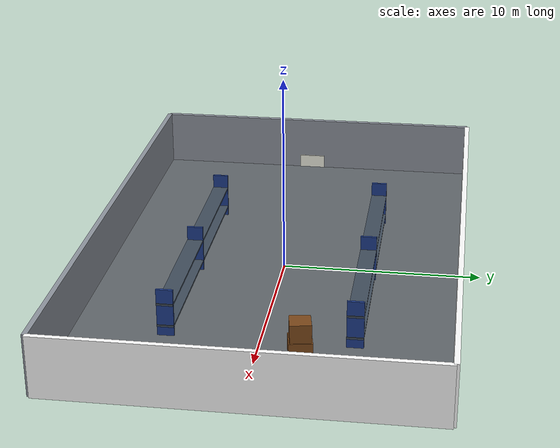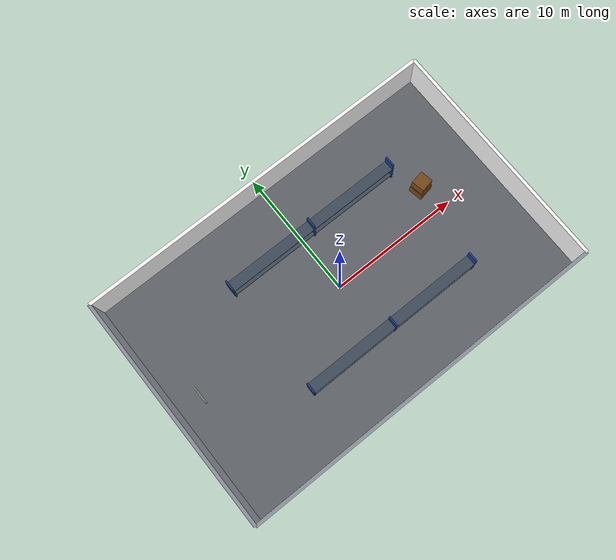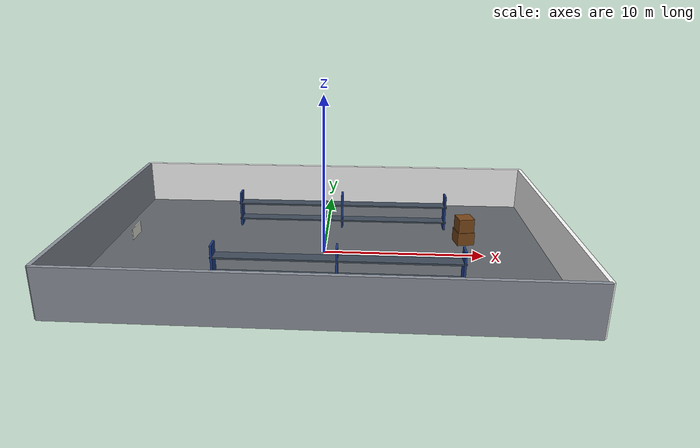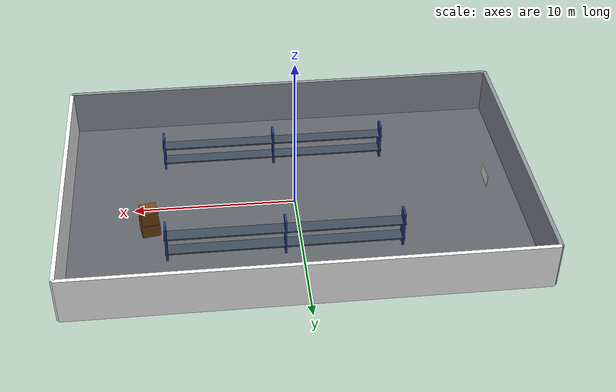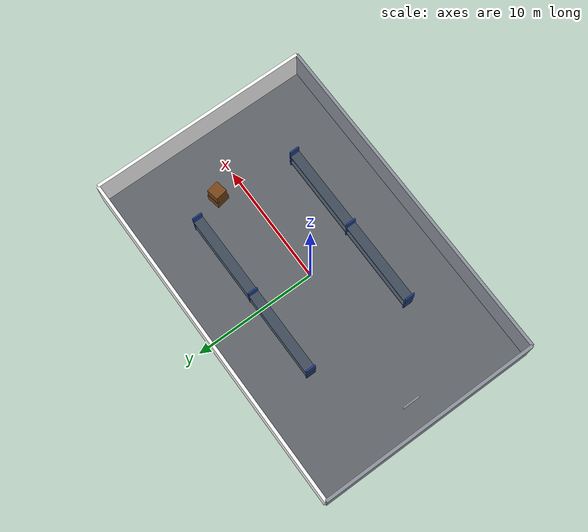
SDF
<?xml version="1.0"?>
<!-- Download-free TurtleBot3 + Ouster warehouse. Use ray_mode:=raycast. -->
<sdf version="1.9">
  <world name="turtlebot3_warehouse">
    <physics name="default" type="ignored">
      <max_step_size>0.004</max_step_size>
      <real_time_factor>1.0</real_time_factor>
      <real_time_update_rate>250</real_time_update_rate>
    </physics>
    <plugin filename="gz-sim-physics-system" name="gz::sim::systems::Physics"/>
    <plugin filename="gz-sim-scene-broadcaster-system" name="gz::sim::systems::SceneBroadcaster"/>
    <plugin filename="gz-sim-user-commands-system" name="gz::sim::systems::UserCommands"/>
    <plugin filename="gz-sim-imu-system" name="gz::sim::systems::Imu"/>
    <plugin filename="gz-sim-altimeter-system" name="gz::sim::systems::Altimeter"/>

    <scene>
      <ambient>0.35 0.35 0.38 1</ambient>
      <background>0.55 0.62 0.7 1</background>
      <shadows>true</shadows>
    </scene>
    <light type="directional" name="skylight">
      <cast_shadows>true</cast_shadows>
      <pose>0 0 12 0 0 0</pose>
      <diffuse>0.85 0.82 0.76 1</diffuse>
      <specular>0.25 0.25 0.25 1</specular>
      <direction>-0.4 0.25 -1</direction>
    </light>

    <model name="concrete_floor">
      <static>true</static>
      <link name="link">
        <collision name="collision"><geometry><box><size>28 18 0.1</size></box></geometry></collision>
        <visual name="visual">
          <laser_retro>0.42</laser_retro>
          <geometry><box><size>28 18 0.1</size></box></geometry>
          <material><diffuse>0.38 0.4 0.42 1</diffuse><specular>0.06 0.06 0.06 1</specular></material>
        </visual>
      </link>
    </model>

    <model name="graffiti_wall_north">
      <static>true</static><pose>0 9 1.5 0 0 0</pose>
      <link name="link">
        <collision name="collision"><geometry><box><size>28 0.25 3</size></box></geometry></collision>
        <visual name="visual"><geometry><box><size>28 0.25 3</size></box></geometry>
          <material><ambient>1 1 1 1</ambient><diffuse>1 1 1 1</diffuse><pbr><metal>
            <albedo_map>../media/materials/textures/brick_graffiti.png</albedo_map>
            <metalness>0</metalness><roughness>0.82</roughness>
          </metal></pbr></material>
        </visual>
      </link>
    </model>
    <model name="graffiti_wall_east">
      <static>true</static><pose>14 0 1.5 0 0 0</pose>
      <link name="link">
        <collision name="collision"><geometry><box><size>0.25 18 3</size></box></geometry></collision>
        <visual name="visual"><geometry><box><size>0.25 18 3</size></box></geometry>
          <material><ambient>1 1 1 1</ambient><diffuse>1 1 1 1</diffuse><pbr><metal>
            <albedo_map>../media/materials/textures/brick_graffiti.png</albedo_map>
            <metalness>0</metalness><roughness>0.82</roughness>
          </metal></pbr></material>
        </visual>
      </link>
    </model>
    <model name="wall_south">
      <static>true</static><pose>0 -9 1.5 0 0 0</pose>
      <link name="link">
        <collision name="collision"><geometry><box><size>28 0.25 3</size></box></geometry></collision>
        <visual name="visual"><laser_retro>0.58</laser_retro><geometry><box><size>28 0.25 3</size></box></geometry>
          <material><diffuse>0.56 0.58 0.62 1</diffuse></material></visual>
      </link>
    </model>
    <model name="wall_west">
      <static>true</static><pose>-14 0 1.5 0 0 0</pose>
      <link name="link">
        <collision name="collision"><geometry><box><size>0.25 18 3</size></box></geometry></collision>
        <visual name="visual"><laser_retro>0.58</laser_retro><geometry><box><size>0.25 18 3</size></box></geometry>
          <material><diffuse>0.56 0.58 0.62 1</diffuse></material></visual>
      </link>
    </model>

    <!-- Two shelf rows leave a broad centre aisle around the spawn point. -->
    <model name="rack_row_north">
      <static>true</static><pose>1 4.4 0 0 0 0</pose>
      <link name="link">
        <collision name="upright_a"><pose>-7 0 1.2 0 0 0</pose><geometry><box><size>0.12 0.8 2.4</size></box></geometry></collision>
        <visual name="upright_a_v"><pose>-7 0 1.2 0 0 0</pose><laser_retro>0.62</laser_retro><geometry><box><size>0.12 0.8 2.4</size></box></geometry><material><diffuse>0.12 0.24 0.55 1</diffuse><specular>0.3 0.3 0.3 1</specular></material></visual>
        <collision name="upright_b"><pose>0 0 1.2 0 0 0</pose><geometry><box><size>0.12 0.8 2.4</size></box></geometry></collision>
        <visual name="upright_b_v"><pose>0 0 1.2 0 0 0</pose><laser_retro>0.62</laser_retro><geometry><box><size>0.12 0.8 2.4</size></box></geometry><material><diffuse>0.12 0.24 0.55 1</diffuse><specular>0.3 0.3 0.3 1</specular></material></visual>
        <collision name="upright_c"><pose>7 0 1.2 0 0 0</pose><geometry><box><size>0.12 0.8 2.4</size></box></geometry></collision>
        <visual name="upright_c_v"><pose>7 0 1.2 0 0 0</pose><laser_retro>0.62</laser_retro><geometry><box><size>0.12 0.8 2.4</size></box></geometry><material><diffuse>0.12 0.24 0.55 1</diffuse><specular>0.3 0.3 0.3 1</specular></material></visual>
        <collision name="shelf_low"><pose>0 0 0.55 0 0 0</pose><geometry><box><size>14.2 0.8 0.1</size></box></geometry></collision>
        <visual name="shelf_low_v"><pose>0 0 0.55 0 0 0</pose><laser_retro>0.48</laser_retro><geometry><box><size>14.2 0.8 0.1</size></box></geometry><material><diffuse>0.25 0.3 0.36 1</diffuse></material></visual>
        <collision name="shelf_high"><pose>0 0 1.65 0 0 0</pose><geometry><box><size>14.2 0.8 0.1</size></box></geometry></collision>
        <visual name="shelf_high_v"><pose>0 0 1.65 0 0 0</pose><laser_retro>0.48</laser_retro><geometry><box><size>14.2 0.8 0.1</size></box></geometry><material><diffuse>0.25 0.3 0.36 1</diffuse></material></visual>
      </link>
    </model>
    <model name="rack_row_south">
      <static>true</static><pose>1 -4.4 0 0 0 0</pose>
      <link name="link">
        <collision name="upright_a"><pose>-7 0 1.2 0 0 0</pose><geometry><box><size>0.12 0.8 2.4</size></box></geometry></collision>
        <visual name="upright_a_v"><pose>-7 0 1.2 0 0 0</pose><laser_retro>0.62</laser_retro><geometry><box><size>0.12 0.8 2.4</size></box></geometry><material><diffuse>0.12 0.24 0.55 1</diffuse><specular>0.3 0.3 0.3 1</specular></material></visual>
        <collision name="upright_b"><pose>0 0 1.2 0 0 0</pose><geometry><box><size>0.12 0.8 2.4</size></box></geometry></collision>
        <visual name="upright_b_v"><pose>0 0 1.2 0 0 0</pose><laser_retro>0.62</laser_retro><geometry><box><size>0.12 0.8 2.4</size></box></geometry><material><diffuse>0.12 0.24 0.55 1</diffuse><specular>0.3 0.3 0.3 1</specular></material></visual>
        <collision name="upright_c"><pose>7 0 1.2 0 0 0</pose><geometry><box><size>0.12 0.8 2.4</size></box></geometry></collision>
        <visual name="upright_c_v"><pose>7 0 1.2 0 0 0</pose><laser_retro>0.62</laser_retro><geometry><box><size>0.12 0.8 2.4</size></box></geometry><material><diffuse>0.12 0.24 0.55 1</diffuse><specular>0.3 0.3 0.3 1</specular></material></visual>
        <collision name="shelf_low"><pose>0 0 0.55 0 0 0</pose><geometry><box><size>14.2 0.8 0.1</size></box></geometry></collision>
        <visual name="shelf_low_v"><pose>0 0 0.55 0 0 0</pose><laser_retro>0.48</laser_retro><geometry><box><size>14.2 0.8 0.1</size></box></geometry><material><diffuse>0.25 0.3 0.36 1</diffuse></material></visual>
        <collision name="shelf_high"><pose>0 0 1.65 0 0 0</pose><geometry><box><size>14.2 0.8 0.1</size></box></geometry></collision>
        <visual name="shelf_high_v"><pose>0 0 1.65 0 0 0</pose><laser_retro>0.48</laser_retro><geometry><box><size>14.2 0.8 0.1</size></box></geometry><material><diffuse>0.25 0.3 0.36 1</diffuse></material></visual>
      </link>
    </model>

    <model name="crate_stack">
      <static>true</static><pose>9 2 0 0 0 0.18</pose>
      <link name="link">
        <collision name="c1"><pose>0 0 0.45 0 0 0</pose><geometry><box><size>1.1 1.1 0.9</size></box></geometry></collision>
        <visual name="v1"><pose>0 0 0.45 0 0 0</pose><laser_retro>0.32</laser_retro><geometry><box><size>1.1 1.1 0.9</size></box></geometry><material><diffuse>0.48 0.28 0.1 1</diffuse></material></visual>
        <collision name="c2"><pose>0 0 1.35 0 0 0</pose><geometry><box><size>1.0 1.0 0.9</size></box></geometry></collision>
        <visual name="v2"><pose>0 0 1.35 0 0 0</pose><laser_retro>0.32</laser_retro><geometry><box><size>1.0 1.0 0.9</size></box></geometry><material><diffuse>0.48 0.28 0.1 1</diffuse></material></visual>
      </link>
    </model>
    <model name="retro_loading_sign">
      <static>true</static><pose>-12 0 1.15 0 0 0</pose>
      <link name="link"><visual name="visual"><laser_retro>6.0</laser_retro><geometry><box><size>0.05 1.4 0.7</size></box></geometry><material><diffuse>0.95 0.95 0.9 1</diffuse></material></visual></link>
    </model>
  </world>
</sdf>
